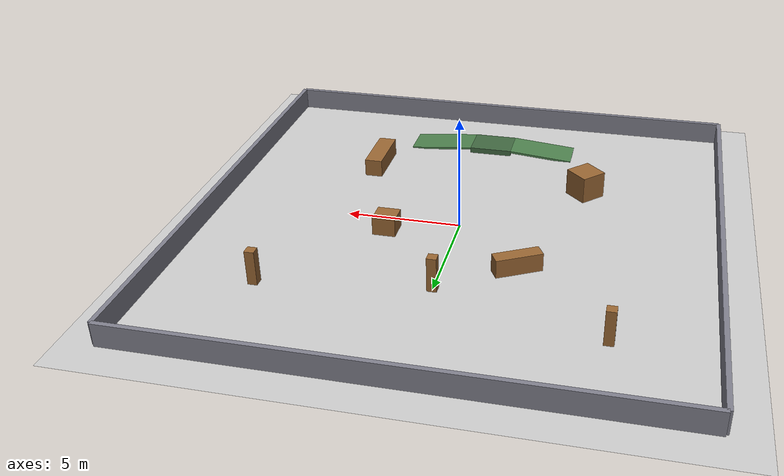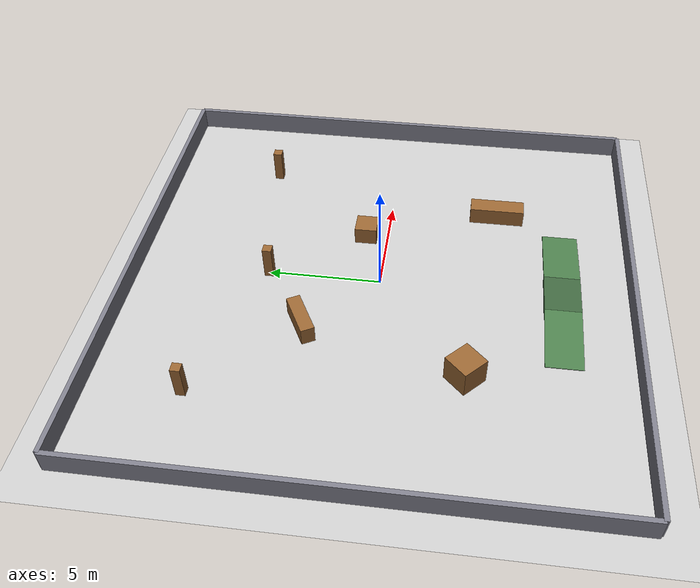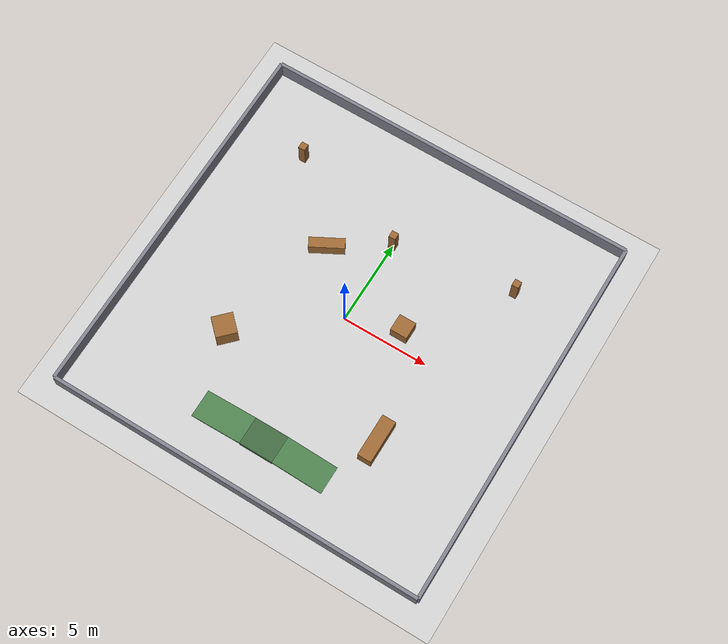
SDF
<?xml version="1.0"?>

<sdf version="1.6">
  <world name="rover_world">
    <physics name="1ms" type="ignored">
      <max_step_size>0.001</max_step_size>
      <real_time_factor>1.0</real_time_factor>
    </physics>

    <plugin filename="gz-sim-contact-system" name="gz::sim::systems::Contact" />
    <plugin filename="gz-sim-imu-system" name="gz::sim::systems::Imu" />
    <plugin filename="gz-sim-navsat-system" name="gz::sim::systems::NavSat" />
    <plugin filename="gz-sim-physics-system" name="gz::sim::systems::Physics" />
    <plugin filename="gz-sim-scene-broadcaster-system" name="gz::sim::systems::SceneBroadcaster" />
    <plugin filename="gz-sim-sensors-system" name="gz::sim::systems::Sensors">
      <render_engine>ogre2</render_engine>
    </plugin>
    <plugin filename="gz-sim-user-commands-system" name="gz::sim::systems::UserCommands" />

    <spherical_coordinates>
      <surface_model>EARTH_WGS84</surface_model>
      <world_frame_orientation>ENU</world_frame_orientation>
      <latitude_deg>50.088384</latitude_deg>
      <longitude_deg>19.939128</longitude_deg>
      <elevation>0</elevation>
      <heading_deg>0</heading_deg>
    </spherical_coordinates>

    <model name="rover_world">
      <static>true</static>

      <link name="map">
        <light type="directional" name="sun">
          <cast_shadows>true</cast_shadows>
          <pose>0 0 10 0 0 0</pose>
          <diffuse>0.8 0.8 0.8 1</diffuse>
          <specular>0.2 0.2 0.2 1</specular>
          <attenuation>
            <range>1000</range>
            <constant>0.9</constant>
            <linear>0.01</linear>
            <quadratic>0.001</quadratic>
          </attenuation>
          <direction>-0.5 0.1 -0.9</direction>
        </light>
        <collision name="collision">
          <geometry>
            <plane>
              <normal>0 0 1</normal>
              <size>25 25</size>
            </plane>
          </geometry>
        </collision>
        <visual name="visual">
          <geometry>
            <plane>
              <normal>0 0 1</normal>
              <size>25 25</size>
            </plane>
          </geometry>
          <material>
            <ambient>0.8 0.8 0.8 1</ambient>
            <diffuse>0.8 0.8 0.8 1</diffuse>
            <specular>0.8 0.8 0.8 1</specular>
          </material>
        </visual>
      </link>
    </model>

    <model name="wall_north">
      <static>true</static>
      <pose>0 11 0.5 0 0 0.0</pose>
      <link name="link">
        <collision name="collision">
          <geometry><box><size>22 0.2 1.0</size></box></geometry>
        </collision>
        <visual name="visual">
          <geometry><box><size>22 0.2 1.0</size></box></geometry>
          <material><ambient>0.5 0.5 0.55 1</ambient><diffuse>0.5 0.5 0.55 1</diffuse></material>
        </visual>
      </link>
    </model>

    <model name="wall_south">
      <static>true</static>
      <pose>0 -11 0.5 0 0 0.0</pose>
      <link name="link">
        <collision name="collision">
          <geometry><box><size>22 0.2 1.0</size></box></geometry>
        </collision>
        <visual name="visual">
          <geometry><box><size>22 0.2 1.0</size></box></geometry>
          <material><ambient>0.5 0.5 0.55 1</ambient><diffuse>0.5 0.5 0.55 1</diffuse></material>
        </visual>
      </link>
    </model>

    <model name="wall_east">
      <static>true</static>
      <pose>11 0 0.5 0 0 0.0</pose>
      <link name="link">
        <collision name="collision">
          <geometry><box><size>0.2 22 1.0</size></box></geometry>
        </collision>
        <visual name="visual">
          <geometry><box><size>0.2 22 1.0</size></box></geometry>
          <material><ambient>0.5 0.5 0.55 1</ambient><diffuse>0.5 0.5 0.55 1</diffuse></material>
        </visual>
      </link>
    </model>

    <model name="wall_west">
      <static>true</static>
      <pose>-11 0 0.5 0 0 0.0</pose>
      <link name="link">
        <collision name="collision">
          <geometry><box><size>0.2 22 1.0</size></box></geometry>
        </collision>
        <visual name="visual">
          <geometry><box><size>0.2 22 1.0</size></box></geometry>
          <material><ambient>0.5 0.5 0.55 1</ambient><diffuse>0.5 0.5 0.55 1</diffuse></material>
        </visual>
      </link>
    </model>

    <model name="box_1">
      <static>true</static>
      <pose>3 1 0.4 0 0 0.0</pose>
      <link name="link">
        <collision name="collision">
          <geometry><box><size>1.0 1.0 0.8</size></box></geometry>
        </collision>
        <visual name="visual">
          <geometry><box><size>1.0 1.0 0.8</size></box></geometry>
          <material><ambient>0.6 0.4 0.2 1</ambient><diffuse>0.6 0.4 0.2 1</diffuse></material>
        </visual>
      </link>
    </model>

    <model name="box_2">
      <static>true</static>
      <pose>-3 3 0.4 0 0 0.5</pose>
      <link name="link">
        <collision name="collision">
          <geometry><box><size>2.0 0.6 0.8</size></box></geometry>
        </collision>
        <visual name="visual">
          <geometry><box><size>2.0 0.6 0.8</size></box></geometry>
          <material><ambient>0.6 0.4 0.2 1</ambient><diffuse>0.6 0.4 0.2 1</diffuse></material>
        </visual>
      </link>
    </model>

    <model name="box_3">
      <static>true</static>
      <pose>5 -5 0.4 0 0 0.0</pose>
      <link name="link">
        <collision name="collision">
          <geometry><box><size>0.8 2.5 0.8</size></box></geometry>
        </collision>
        <visual name="visual">
          <geometry><box><size>0.8 2.5 0.8</size></box></geometry>
          <material><ambient>0.6 0.4 0.2 1</ambient><diffuse>0.6 0.4 0.2 1</diffuse></material>
        </visual>
      </link>
    </model>

    <model name="box_4">
      <static>true</static>
      <pose>-5 -4 0.6 0 0 0.8</pose>
      <link name="link">
        <collision name="collision">
          <geometry><box><size>1.2 1.2 1.2</size></box></geometry>
        </collision>
        <visual name="visual">
          <geometry><box><size>1.2 1.2 1.2</size></box></geometry>
          <material><ambient>0.6 0.4 0.2 1</ambient><diffuse>0.6 0.4 0.2 1</diffuse></material>
        </visual>
      </link>
    </model>

    <model name="pillar_1">
      <static>true</static>
      <pose>0 5 0.75 0 0 0.0</pose>
      <link name="link">
        <collision name="collision">
          <geometry><box><size>0.4 0.4 1.5</size></box></geometry>
        </collision>
        <visual name="visual">
          <geometry><box><size>0.4 0.4 1.5</size></box></geometry>
          <material><ambient>0.6 0.4 0.2 1</ambient><diffuse>0.6 0.4 0.2 1</diffuse></material>
        </visual>
      </link>
    </model>

    <model name="pillar_2">
      <static>true</static>
      <pose>-7 7 0.75 0 0 0.0</pose>
      <link name="link">
        <collision name="collision">
          <geometry><box><size>0.4 0.4 1.5</size></box></geometry>
        </collision>
        <visual name="visual">
          <geometry><box><size>0.4 0.4 1.5</size></box></geometry>
          <material><ambient>0.6 0.4 0.2 1</ambient><diffuse>0.6 0.4 0.2 1</diffuse></material>
        </visual>
      </link>
    </model>

    <model name="pillar_3">
      <static>true</static>
      <pose>7 6 0.75 0 0 0.0</pose>
      <link name="link">
        <collision name="collision">
          <geometry><box><size>0.4 0.4 1.5</size></box></geometry>
        </collision>
        <visual name="visual">
          <geometry><box><size>0.4 0.4 1.5</size></box></geometry>
          <material><ambient>0.6 0.4 0.2 1</ambient><diffuse>0.6 0.4 0.2 1</diffuse></material>
        </visual>
      </link>
    </model>

    <model name="ramp_up">
      <static>true</static>
      <pose>-2.4899 -8 0.0809 0 -0.0873 0</pose>
      <link name="link">
        <collision name="collision">
          <geometry><box><size>3.0 1.6 0.1</size></box></geometry>
          <surface><friction><ode><mu>1.0</mu><mu2>1.0</mu2></ode></friction></surface>
        </collision>
        <visual name="visual">
          <geometry><box><size>3.0 1.6 0.1</size></box></geometry>
          <material><ambient>0.3 0.5 0.3 1</ambient><diffuse>0.3 0.5 0.3 1</diffuse></material>
        </visual>
      </link>
    </model>

    <model name="ramp_platform">
      <static>true</static>
      <pose>0 -8 0.13075 0 0 0</pose>
      <link name="link">
        <collision name="collision">
          <geometry><box><size>2.0 1.6 0.2615</size></box></geometry>
          <surface><friction><ode><mu>1.0</mu><mu2>1.0</mu2></ode></friction></surface>
        </collision>
        <visual name="visual">
          <geometry><box><size>2.0 1.6 0.2615</size></box></geometry>
          <material><ambient>0.25 0.4 0.25 1</ambient><diffuse>0.25 0.4 0.25 1</diffuse></material>
        </visual>
      </link>
    </model>

    <model name="ramp_down">
      <static>true</static>
      <pose>2.4899 -8 0.0809 0 0.0873 0</pose>
      <link name="link">
        <collision name="collision">
          <geometry><box><size>3.0 1.6 0.1</size></box></geometry>
          <surface><friction><ode><mu>1.0</mu><mu2>1.0</mu2></ode></friction></surface>
        </collision>
        <visual name="visual">
          <geometry><box><size>3.0 1.6 0.1</size></box></geometry>
          <material><ambient>0.3 0.5 0.3 1</ambient><diffuse>0.3 0.5 0.3 1</diffuse></material>
        </visual>
      </link>
    </model>

  </world>
</sdf>
